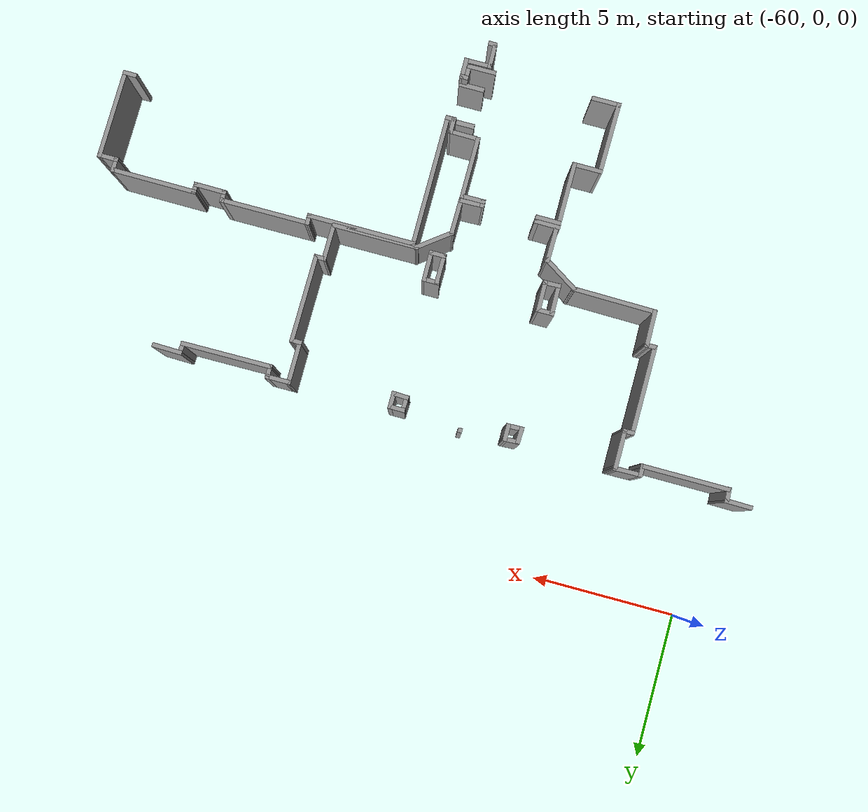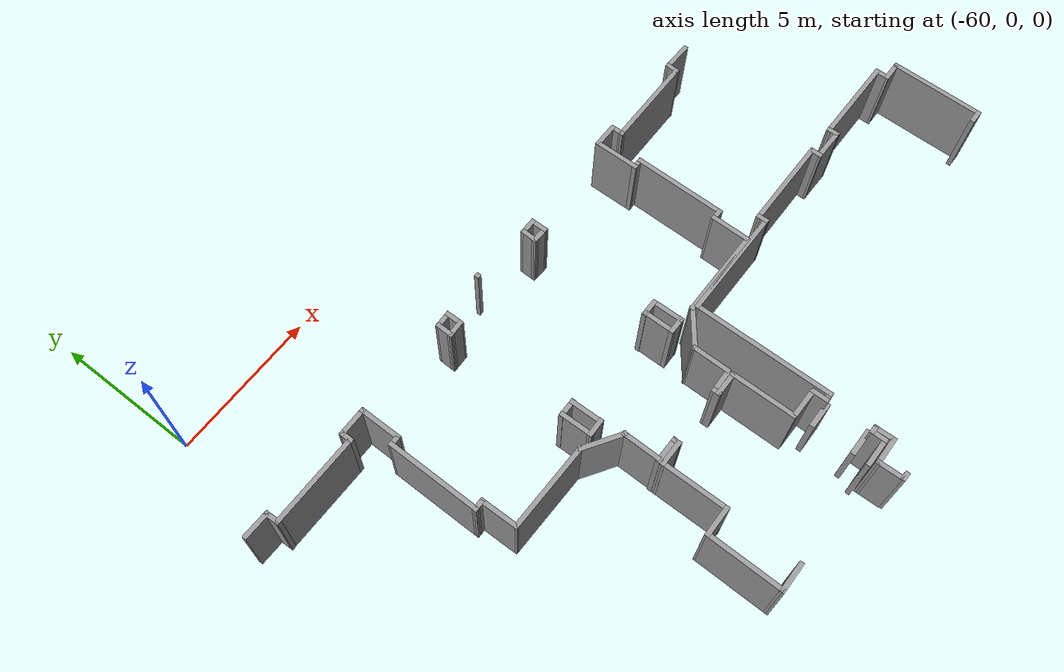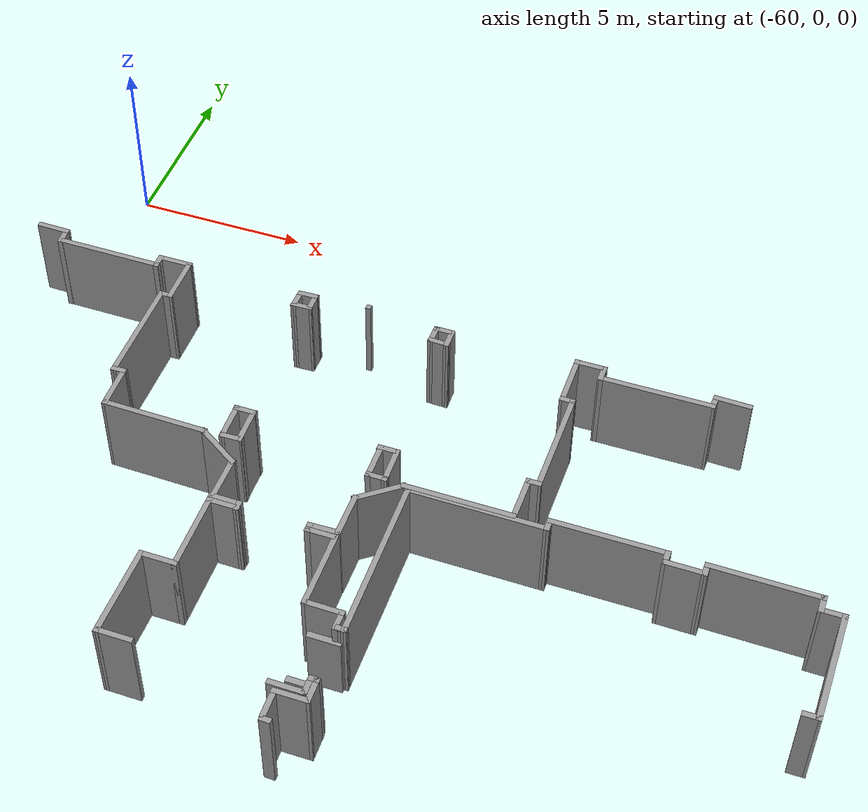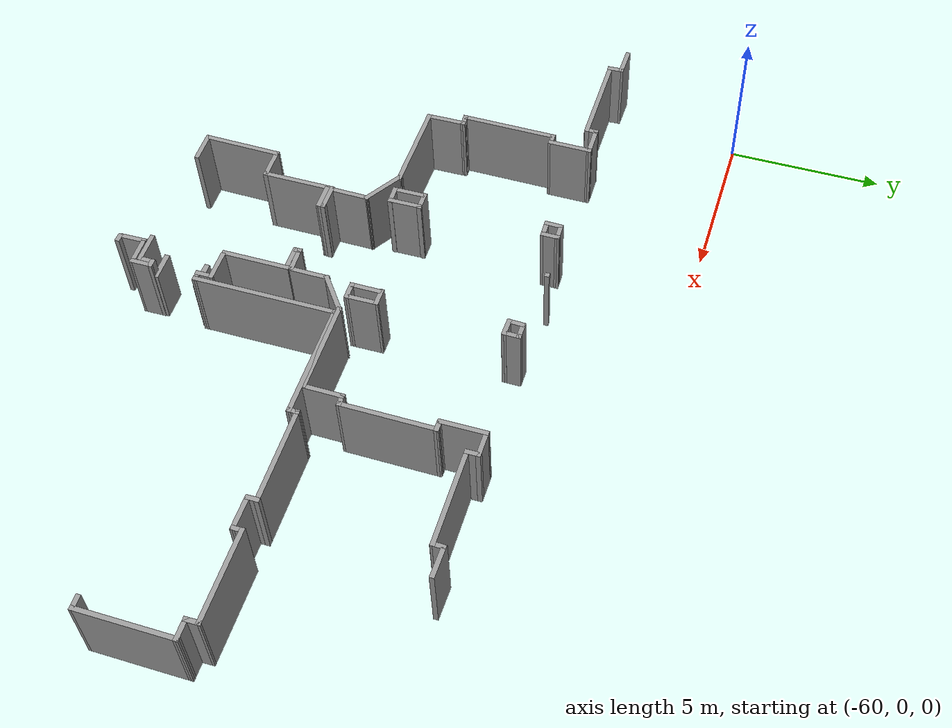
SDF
<sdf version="1.7">
 <model name="TD_n1_largo">
  <pose>-6.3187 -9.13173 0 0 -0 0</pose>
  <link name="Door_0">
   <collision name="Door_0_Collision">
    <geometry><box><size>0.9 0.17 2</size></box></geometry>
    <pose>0 0 1 0 -0 0</pose>
   </collision>
   <visual name="Door_0_Visual">
    <pose>0 0 1 0 -0 0</pose>
    <geometry><box><size>0.9 0.17 2</size></box></geometry>
    <material>
     <script><uri>file://media/materials/scripts/gazebo.material</uri><name>Gazebo/Grey</name></script>
    </material>
   </visual>
   <pose>-42.1501 -5.33292 0 0 -0 0</pose>
  </link>
  <link name="Door_1">
   <collision name="Door_1_Collision">
    <geometry><box><size>0.9 0.17 2</size></box></geometry>
    <pose>0 0 1 0 -0 0</pose>
   </collision>
   <visual name="Door_1_Visual">
    <pose>0 0 1 0 -0 0</pose>
    <geometry><box><size>0.9 0.17 2</size></box></geometry>
    <material>
     <script><uri>file://media/materials/scripts/gazebo.material</uri><name>Gazebo/Grey</name></script>
    </material>
   </visual>
   <pose>-42.1501 -6.68053 0 0 -0 0</pose>
  </link>
  <link name="Wall_100">
   <collision name="Wall_100_Collision">
    <geometry><box><size>1.28047 0.15 2.5</size></box></geometry>
    <pose>0 0 1.25 0 -0 0</pose>
   </collision>
   <visual name="Wall_100_Visual">
    <pose>0 0 1.25 0 -0 0</pose>
    <geometry><box><size>1.28047 0.15 2.5</size></box></geometry>
    <material>
     <script><uri>file://media/materials/scripts/gazebo.material</uri><name>Gazebo/Grey</name></script>
     <ambient>1 1 1 1</ambient>
    </material>
    <meta><layer>0</layer></meta>
   </visual>
   <pose>-42.8367 -1.97799 0 0 -0 1.5631</pose>
  </link>
  <link name="Wall_101">
   <collision name="Wall_101_Collision">
    <geometry><box><size>1.44048 0.15 2.5</size></box></geometry>
    <pose>0 0 1.25 0 -0 0</pose>
   </collision>
   <visual name="Wall_101_Visual">
    <pose>0 0 1.25 0 -0 0</pose>
    <geometry><box><size>1.44048 0.15 2.5</size></box></geometry>
    <material>
     <script><uri>file://media/materials/scripts/gazebo.material</uri><name>Gazebo/Grey</name></script>
     <ambient>1 1 1 1</ambient>
    </material>
    <meta><layer>0</layer></meta>
   </visual>
   <pose>-42.3193 -1.02147 0 0 -0 0.651587</pose>
  </link>
  <link name="Wall_102">
   <collision name="Wall_102_Collision">
    <geometry><box><size>3.03696 0.15 2.5</size></box></geometry>
    <pose>0 0 1.25 0 -0 0</pose>
   </collision>
   <visual name="Wall_102_Visual">
    <pose>0 0 1.25 0 -0 0</pose>
    <geometry><box><size>3.03696 0.15 2.5</size></box></geometry>
    <material>
     <script><uri>file://media/materials/scripts/gazebo.material</uri><name>Gazebo/Grey</name></script>
     <ambient>1 1 1 1</ambient>
    </material>
    <meta><layer>0</layer></meta>
   </visual>
   <pose>-40.3628 -0.630163 0 0 -0 0</pose>
  </link>
  <link name="Wall_12">
   <collision name="Wall_12_Collision">
    <geometry><box><size>0.486493 0.15 2.5</size></box></geometry>
    <pose>0 0 1.25 0 -0 0</pose>
   </collision>
   <visual name="Wall_12_Visual">
    <pose>0 0 1.25 0 -0 0</pose>
    <geometry><box><size>0.486493 0.15 2.5</size></box></geometry>
    <material>
     <script><uri>file://media/materials/scripts/gazebo.material</uri><name>Gazebo/Grey</name></script>
     <ambient>1 1 1 1</ambient>
    </material>
    <meta><layer>0</layer></meta>
   </visual>
   <pose>-30.735 -3.8925 0 0 -0 0</pose>
  </link>
  <link name="Wall_13">
   <collision name="Wall_13_Collision">
    <geometry><box><size>3.148 0.15 2.5</size></box></geometry>
    <pose>0 0 1.25 0 -0 0</pose>
   </collision>
   <visual name="Wall_13_Visual">
    <pose>0 0 1.25 0 -0 0</pose>
    <geometry><box><size>3.148 0.15 2.5</size></box></geometry>
    <material>
     <script><uri>file://media/materials/scripts/gazebo.material</uri><name>Gazebo/Grey</name></script>
     <ambient>1 1 1 1</ambient>
    </material>
    <meta><layer>0</layer></meta>
   </visual>
   <pose>-30.5515 -2.39358 0 0 -0 1.56059</pose>
  </link>
  <link name="Wall_132">
   <collision name="Wall_132_Collision">
    <geometry><box><size>0.299942 0.15 2.5</size></box></geometry>
    <pose>0 0 1.25 0 -0 0</pose>
   </collision>
   <visual name="Wall_132_Visual">
    <pose>0 0 1.25 0 -0 0</pose>
    <geometry><box><size>0.299942 0.15 2.5</size></box></geometry>
    <material>
     <script><uri>file://media/materials/scripts/gazebo.material</uri><name>Gazebo/Grey</name></script>
     <ambient>1 1 1 1</ambient>
    </material>
    <meta><layer>0</layer></meta>
   </visual>
   <pose>-41.832 -6.77616 0 0 -0 0</pose>
  </link>
  <link name="Wall_133">
   <collision name="Wall_133_Collision">
    <geometry><box><size>0.742112 0.15 2.5</size></box></geometry>
    <pose>0 0 1.25 0 -0 0</pose>
   </collision>
   <visual name="Wall_133_Visual">
    <pose>0 0 1.25 0 -0 0</pose>
    <geometry><box><size>0.742112 0.15 2.5</size></box></geometry>
    <material>
     <script><uri>file://media/materials/scripts/gazebo.material</uri><name>Gazebo/Grey</name></script>
     <ambient>1 1 1 1</ambient>
    </material>
    <meta><layer>0</layer></meta>
   </visual>
   <pose>-41.7558 -7.07218 0 0 -0 -1.56584</pose>
  </link>
  <link name="Wall_134">
   <collision name="Wall_134_Collision">
    <geometry><box><size>0.980954 0.15 2.5</size></box></geometry>
    <pose>0 0 1.25 0 -0 0</pose>
   </collision>
   <visual name="Wall_134_Visual">
    <pose>0 0 1.25 0 -0 0</pose>
    <geometry><box><size>0.980954 0.15 2.5</size></box></geometry>
    <material>
     <script><uri>file://media/materials/scripts/gazebo.material</uri><name>Gazebo/Grey</name></script>
     <ambient>1 1 1 1</ambient>
    </material>
    <meta><layer>0</layer></meta>
   </visual>
   <pose>-42.1698 -7.37118 0 0 -0 -3.13442</pose>
  </link>
  <link name="Wall_135">
   <collision name="Wall_135_Collision">
    <geometry><box><size>0.840096 0.15 2.5</size></box></geometry>
    <pose>0 0 1.25 0 -0 0</pose>
   </collision>
   <visual name="Wall_135_Visual">
    <pose>0 0 1.25 0 -0 0</pose>
    <geometry><box><size>0.840096 0.15 2.5</size></box></geometry>
    <material>
     <script><uri>file://media/materials/scripts/gazebo.material</uri><name>Gazebo/Grey</name></script>
     <ambient>1 1 1 1</ambient>
    </material>
    <meta><layer>0</layer></meta>
   </visual>
   <pose>-42.5795 -7.71917 0 0 -0 -1.55413</pose>
  </link>
  <link name="Wall_137">
   <collision name="Wall_137_Collision">
    <geometry><box><size>0.293985 0.15 2.5</size></box></geometry>
    <pose>0 0 1.25 0 -0 0</pose>
   </collision>
   <visual name="Wall_137_Visual">
    <pose>0 0 1.25 0 -0 0</pose>
    <geometry><box><size>0.293985 0.15 2.5</size></box></geometry>
    <material>
     <script><uri>file://media/materials/scripts/gazebo.material</uri><name>Gazebo/Grey</name></script>
     <ambient>1 1 1 1</ambient>
    </material>
    <meta><layer>0</layer></meta>
   </visual>
   <pose>-42.4823 -8.16209 0 0 -0 -0.045423</pose>
  </link>
  <link name="Wall_14">
   <collision name="Wall_14_Collision">
    <geometry><box><size>0.731214 0.15 2.5</size></box></geometry>
    <pose>0 0 1.25 0 -0 0</pose>
   </collision>
   <visual name="Wall_14_Visual">
    <pose>0 0 1.25 0 -0 0</pose>
    <geometry><box><size>0.731214 0.15 2.5</size></box></geometry>
    <material>
     <script><uri>file://media/materials/scripts/gazebo.material</uri><name>Gazebo/Grey</name></script>
     <ambient>1 1 1 1</ambient>
    </material>
    <meta><layer>0</layer></meta>
   </visual>
   <pose>-30.8268 -0.89466 0 0 -0 3.14159</pose>
  </link>
  <link name="Wall_150">
   <collision name="Wall_150_Collision">
    <geometry><box><size>3.15152 0.15 2.5</size></box></geometry>
    <pose>0 0 1.25 0 -0 0</pose>
   </collision>
   <visual name="Wall_150_Visual">
    <pose>0 0 1.25 0 -0 0</pose>
    <geometry><box><size>3.15152 0.15 2.5</size></box></geometry>
    <material>
     <script><uri>file://media/materials/scripts/gazebo.material</uri><name>Gazebo/Grey</name></script>
     <ambient>1 1 1 1</ambient>
    </material>
    <meta><layer>0</layer></meta>
   </visual>
   <pose>-50.4354 2.08143 0 0 -0 1.56696</pose>
  </link>
  <link name="Wall_151">
   <collision name="Wall_151_Collision">
    <geometry><box><size>0.415151 0.15 2.5</size></box></geometry>
    <pose>0 0 1.25 0 -0 0</pose>
   </collision>
   <visual name="Wall_151_Visual">
    <pose>0 0 1.25 0 -0 0</pose>
    <geometry><box><size>0.415151 0.15 2.5</size></box></geometry>
    <material>
     <script><uri>file://media/materials/scripts/gazebo.material</uri><name>Gazebo/Grey</name></script>
     <ambient>1 1 1 1</ambient>
    </material>
    <meta><layer>0</layer></meta>
   </visual>
   <pose>-50.2971 3.58444 0 0 -0 0.017007</pose>
  </link>
  <link name="Wall_152">
   <collision name="Wall_152_Collision">
    <geometry><box><size>1.44438 0.15 2.5</size></box></geometry>
    <pose>0 0 1.25 0 -0 0</pose>
   </collision>
   <visual name="Wall_152_Visual">
    <pose>0 0 1.25 0 -0 0</pose>
    <geometry><box><size>1.44438 0.15 2.5</size></box></geometry>
    <material>
     <script><uri>file://media/materials/scripts/gazebo.material</uri><name>Gazebo/Grey</name></script>
     <ambient>1 1 1 1</ambient>
    </material>
    <meta><layer>0</layer></meta>
   </visual>
   <pose>-50.1645 4.23383 0 0 -0 1.5708</pose>
  </link>
  <link name="Wall_154">
   <collision name="Wall_154_Collision">
    <geometry><box><size>1.31156 0.15 2.5</size></box></geometry>
    <pose>0 0 1.25 0 -0 0</pose>
   </collision>
   <visual name="Wall_154_Visual">
    <pose>0 0 1.25 0 -0 0</pose>
    <geometry><box><size>1.31156 0.15 2.5</size></box></geometry>
    <material>
     <script><uri>file://media/materials/scripts/gazebo.material</uri><name>Gazebo/Grey</name></script>
     <ambient>1 1 1 1</ambient>
    </material>
    <meta><layer>0</layer></meta>
   </visual>
   <pose>-38.8896 -0.01052 0 0 -0 1.5609</pose>
  </link>
  <link name="Wall_155">
   <collision name="Wall_155_Collision">
    <geometry><box><size>0.426 0.15 2.5</size></box></geometry>
    <pose>0 0 1.25 0 -0 0</pose>
   </collision>
   <visual name="Wall_155_Visual">
    <pose>0 0 1.25 0 -0 0</pose>
    <geometry><box><size>0.426 0.15 2.5</size></box></geometry>
    <material>
     <script><uri>file://media/materials/scripts/gazebo.material</uri><name>Gazebo/Grey</name></script>
     <ambient>1 1 1 1</ambient>
    </material>
    <meta><layer>0</layer></meta>
   </visual>
   <pose>-38.7458 0.57023 0 0 -0 0</pose>
  </link>
  <link name="Wall_156">
   <collision name="Wall_156_Collision">
    <geometry><box><size>3.11709 0.15 2.5</size></box></geometry>
    <pose>0 0 1.25 0 -0 0</pose>
   </collision>
   <visual name="Wall_156_Visual">
    <pose>0 0 1.25 0 -0 0</pose>
    <geometry><box><size>3.11709 0.15 2.5</size></box></geometry>
    <material>
     <script><uri>file://media/materials/scripts/gazebo.material</uri><name>Gazebo/Grey</name></script>
     <ambient>1 1 1 1</ambient>
    </material>
    <meta><layer>0</layer></meta>
   </visual>
   <pose>-38.5963 2.05373 0 0 -0 1.56304</pose>
  </link>
  <link name="Wall_157">
   <collision name="Wall_157_Collision">
    <geometry><box><size>0.426239 0.15 2.5</size></box></geometry>
    <pose>0 0 1.25 0 -0 0</pose>
   </collision>
   <visual name="Wall_157_Visual">
    <pose>0 0 1.25 0 -0 0</pose>
    <geometry><box><size>0.426239 0.15 2.5</size></box></geometry>
    <material>
     <script><uri>file://media/materials/scripts/gazebo.material</uri><name>Gazebo/Grey</name></script>
     <ambient>1 1 1 1</ambient>
    </material>
    <meta><layer>0</layer></meta>
   </visual>
   <pose>-38.7228 3.53723 0 0 -0 3.14159</pose>
  </link>
  <link name="Wall_159">
   <collision name="Wall_159_Collision">
    <geometry><box><size>0.6445 0.15 2.5</size></box></geometry>
    <pose>0 0 1.25 0 -0 0</pose>
   </collision>
   <visual name="Wall_159_Visual">
    <pose>0 0 1.25 0 -0 0</pose>
    <geometry><box><size>0.6445 0.15 2.5</size></box></geometry>
    <material>
     <script><uri>file://media/materials/scripts/gazebo.material</uri><name>Gazebo/Grey</name></script>
     <ambient>1 1 1 1</ambient>
    </material>
    <meta><layer>0</layer></meta>
   </visual>
   <pose>-46.5716 0.37473 0 0 -0 0</pose>
  </link>
  <link name="Wall_16">
   <collision name="Wall_16_Collision">
    <geometry><box><size>0.524558 0.15 2.5</size></box></geometry>
    <pose>0 0 1.25 0 -0 0</pose>
   </collision>
   <visual name="Wall_16_Visual">
    <pose>0 0 1.25 0 -0 0</pose>
    <geometry><box><size>0.524558 0.15 2.5</size></box></geometry>
    <material>
     <script><uri>file://media/materials/scripts/gazebo.material</uri><name>Gazebo/Grey</name></script>
     <ambient>1 1 1 1</ambient>
    </material>
    <meta><layer>0</layer></meta>
   </visual>
   <pose>-31.118 -0.707382 0 0 -0 1.57401</pose>
  </link>
  <link name="Wall_160">
   <collision name="Wall_160_Collision">
    <geometry><box><size>1.11607 0.15 2.5</size></box></geometry>
    <pose>0 0 1.25 0 -0 0</pose>
   </collision>
   <visual name="Wall_160_Visual">
    <pose>0 0 1.25 0 -0 0</pose>
    <geometry><box><size>1.11607 0.15 2.5</size></box></geometry>
    <material>
     <script><uri>file://media/materials/scripts/gazebo.material</uri><name>Gazebo/Grey</name></script>
     <ambient>1 1 1 1</ambient>
    </material>
    <meta><layer>0</layer></meta>
   </visual>
   <pose>-46.3301 -0.10827 0 0 -0 -1.55889</pose>
  </link>
  <link name="Wall_161">
   <collision name="Wall_161_Collision">
    <geometry><box><size>0.633137 0.15 2.5</size></box></geometry>
    <pose>0 0 1.25 0 -0 0</pose>
   </collision>
   <visual name="Wall_161_Visual">
    <pose>0 0 1.25 0 -0 0</pose>
    <geometry><box><size>0.633137 0.15 2.5</size></box></geometry>
    <material>
     <script><uri>file://media/materials/scripts/gazebo.material</uri><name>Gazebo/Grey</name></script>
     <ambient>1 1 1 1</ambient>
    </material>
    <meta><layer>0</layer></meta>
   </visual>
   <pose>-46.5543 -0.59702 0 0 -0 -3.11779</pose>
  </link>
  <link name="Wall_162">
   <collision name="Wall_162_Collision">
    <geometry><box><size>1.11607 0.15 2.5</size></box></geometry>
    <pose>0 0 1.25 0 -0 0</pose>
   </collision>
   <visual name="Wall_162_Visual">
    <pose>0 0 1.25 0 -0 0</pose>
    <geometry><box><size>1.11607 0.15 2.5</size></box></geometry>
    <material>
     <script><uri>file://media/materials/scripts/gazebo.material</uri><name>Gazebo/Grey</name></script>
     <ambient>1 1 1 1</ambient>
    </material>
    <meta><layer>0</layer></meta>
   </visual>
   <pose>-46.8016 -0.11977 0 0 -0 1.5827</pose>
  </link>
  <link name="Wall_164">
   <collision name="Wall_164_Collision">
    <geometry><box><size>0.61 0.15 2.5</size></box></geometry>
    <pose>0 0 1.25 0 -0 0</pose>
   </collision>
   <visual name="Wall_164_Visual">
    <pose>0 0 1.25 0 -0 0</pose>
    <geometry><box><size>0.61 0.15 2.5</size></box></geometry>
    <material>
     <script><uri>file://media/materials/scripts/gazebo.material</uri><name>Gazebo/Grey</name></script>
     <ambient>1 1 1 1</ambient>
    </material>
    <meta><layer>0</layer></meta>
   </visual>
   <pose>-42.5753 0.36323 0 0 -0 0</pose>
  </link>
  <link name="Wall_165">
   <collision name="Wall_165_Collision">
    <geometry><box><size>1.09307 0.15 2.5</size></box></geometry>
    <pose>0 0 1.25 0 -0 0</pose>
   </collision>
   <visual name="Wall_165_Visual">
    <pose>0 0 1.25 0 -0 0</pose>
    <geometry><box><size>1.09307 0.15 2.5</size></box></geometry>
    <material>
     <script><uri>file://media/materials/scripts/gazebo.material</uri><name>Gazebo/Grey</name></script>
     <ambient>1 1 1 1</ambient>
    </material>
    <meta><layer>0</layer></meta>
   </visual>
   <pose>-42.3396 -0.10827 0 0 -0 -1.5586</pose>
  </link>
  <link name="Wall_166">
   <collision name="Wall_166_Collision">
    <geometry><box><size>0.5985 0.15 2.5</size></box></geometry>
    <pose>0 0 1.25 0 -0 0</pose>
   </collision>
   <visual name="Wall_166_Visual">
    <pose>0 0 1.25 0 -0 0</pose>
    <geometry><box><size>0.5985 0.15 2.5</size></box></geometry>
    <material>
     <script><uri>file://media/materials/scripts/gazebo.material</uri><name>Gazebo/Grey</name></script>
     <ambient>1 1 1 1</ambient>
    </material>
    <meta><layer>0</layer></meta>
   </visual>
   <pose>-42.5581 -0.57977 0 0 -0 3.14159</pose>
  </link>
  <link name="Wall_167">
   <collision name="Wall_167_Collision">
    <geometry><box><size>1.0585 0.15 2.5</size></box></geometry>
    <pose>0 0 1.25 0 -0 0</pose>
   </collision>
   <visual name="Wall_167_Visual">
    <pose>0 0 1.25 0 -0 0</pose>
    <geometry><box><size>1.0585 0.15 2.5</size></box></geometry>
    <material>
     <script><uri>file://media/materials/scripts/gazebo.material</uri><name>Gazebo/Grey</name></script>
     <ambient>1 1 1 1</ambient>
    </material>
    <meta><layer>0</layer></meta>
   </visual>
   <pose>-42.7823 -0.12552 0 0 -0 1.5708</pose>
  </link>
  <link name="Wall_169">
   <collision name="Wall_169_Collision">
    <geometry><box><size>0.591316 0.15 2.5</size></box></geometry>
    <pose>0 0 1.25 0 -0 0</pose>
   </collision>
   <visual name="Wall_169_Visual">
    <pose>0 0 1.25 0 -0 0</pose>
    <geometry><box><size>0.591316 0.15 2.5</size></box></geometry>
    <material>
     <script><uri>file://media/materials/scripts/gazebo.material</uri><name>Gazebo/Grey</name></script>
     <ambient>1 1 1 1</ambient>
    </material>
    <meta><layer>0</layer></meta>
   </visual>
   <pose>-46.5798 4.88282 0 0 -0 0.034469</pose>
  </link>
  <link name="Wall_17">
   <collision name="Wall_17_Collision">
    <geometry><box><size>3.02336 0.15 2.5</size></box></geometry>
    <pose>0 0 1.25 0 -0 0</pose>
   </collision>
   <visual name="Wall_17_Visual">
    <pose>0 0 1.25 0 -0 0</pose>
    <geometry><box><size>3.02336 0.15 2.5</size></box></geometry>
    <material>
     <script><uri>file://media/materials/scripts/gazebo.material</uri><name>Gazebo/Grey</name></script>
     <ambient>1 1 1 1</ambient>
    </material>
    <meta><layer>0</layer></meta>
   </visual>
   <pose>-32.5552 -0.511575 0 0 -0 3.13566</pose>
  </link>
  <link name="Wall_170">
   <collision name="Wall_170_Collision">
    <geometry><box><size>0.606263 0.15 2.5</size></box></geometry>
    <pose>0 0 1.25 0 -0 0</pose>
   </collision>
   <visual name="Wall_170_Visual">
    <pose>0 0 1.25 0 -0 0</pose>
    <geometry><box><size>0.606263 0.15 2.5</size></box></geometry>
    <material>
     <script><uri>file://media/materials/scripts/gazebo.material</uri><name>Gazebo/Grey</name></script>
     <ambient>1 1 1 1</ambient>
    </material>
    <meta><layer>0</layer></meta>
   </visual>
   <pose>-46.3592 4.6623 0 0 -0 -1.5708</pose>
  </link>
  <link name="Wall_171">
   <collision name="Wall_171_Collision">
    <geometry><box><size>0.607275 0.15 2.5</size></box></geometry>
    <pose>0 0 1.25 0 -0 0</pose>
   </collision>
   <visual name="Wall_171_Visual">
    <pose>0 0 1.25 0 -0 0</pose>
    <geometry><box><size>0.607275 0.15 2.5</size></box></geometry>
    <material>
     <script><uri>file://media/materials/scripts/gazebo.material</uri><name>Gazebo/Grey</name></script>
     <ambient>1 1 1 1</ambient>
    </material>
    <meta><layer>0</layer></meta>
   </visual>
   <pose>-46.5874 4.42656 0 0 -0 -3.10827</pose>
  </link>
  <link name="Wall_172">
   <collision name="Wall_172_Collision">
    <geometry><box><size>0.591316 0.15 2.5</size></box></geometry>
    <pose>0 0 1.25 0 -0 0</pose>
   </collision>
   <visual name="Wall_172_Visual">
    <pose>0 0 1.25 0 -0 0</pose>
    <geometry><box><size>0.591316 0.15 2.5</size></box></geometry>
    <material>
     <script><uri>file://media/materials/scripts/gazebo.material</uri><name>Gazebo/Grey</name></script>
     <ambient>1 1 1 1</ambient>
    </material>
    <meta><layer>0</layer></meta>
   </visual>
   <pose>-46.8079 4.63948 0 0 -0 1.53633</pose>
  </link>
  <link name="Wall_174">
   <collision name="Wall_174_Collision">
    <geometry><box><size>1.54882 0.15 2.5</size></box></geometry>
    <pose>0 0 1.25 0 -0 0</pose>
   </collision>
   <visual name="Wall_174_Visual">
    <pose>0 0 1.25 0 -0 0</pose>
    <geometry><box><size>1.54882 0.15 2.5</size></box></geometry>
    <material>
     <script><uri>file://media/materials/scripts/gazebo.material</uri><name>Gazebo/Grey</name></script>
     <ambient>1 1 1 1</ambient>
    </material>
    <meta><layer>0</layer></meta>
   </visual>
   <pose>-38.8611 4.23664 0 0 -0 1.57116</pose>
  </link>
  <link name="Wall_175">
   <collision name="Wall_175_Collision">
    <geometry><box><size>0.895229 0.15 2.5</size></box></geometry>
    <pose>0 0 1.25 0 -0 0</pose>
   </collision>
   <visual name="Wall_175_Visual">
    <pose>0 0 1.25 0 -0 0</pose>
    <geometry><box><size>0.895229 0.15 2.5</size></box></geometry>
    <material>
     <script><uri>file://media/materials/scripts/gazebo.material</uri><name>Gazebo/Grey</name></script>
     <ambient>1 1 1 1</ambient>
    </material>
    <meta><layer>0</layer></meta>
   </visual>
   <pose>-38.4887 4.93605 0 0 -0 0</pose>
  </link>
  <link name="Wall_176">
   <collision name="Wall_176_Collision">
    <geometry><box><size>0.500132 0.15 2.5</size></box></geometry>
    <pose>0 0 1.25 0 -0 0</pose>
   </collision>
   <visual name="Wall_176_Visual">
    <pose>0 0 1.25 0 -0 0</pose>
    <geometry><box><size>0.500132 0.15 2.5</size></box></geometry>
    <material>
     <script><uri>file://media/materials/scripts/gazebo.material</uri><name>Gazebo/Grey</name></script>
     <ambient>1 1 1 1</ambient>
    </material>
    <meta><layer>0</layer></meta>
   </visual>
   <pose>-38.1161 4.76115 0 0 -0 -1.5708</pose>
  </link>
  <link name="Wall_177">
   <collision name="Wall_177_Collision">
    <geometry><box><size>3.19175 0.15 2.5</size></box></geometry>
    <pose>0 0 1.25 0 -0 0</pose>
   </collision>
   <visual name="Wall_177_Visual">
    <pose>0 0 1.25 0 -0 0</pose>
    <geometry><box><size>3.19175 0.15 2.5</size></box></geometry>
    <material>
     <script><uri>file://media/materials/scripts/gazebo.material</uri><name>Gazebo/Grey</name></script>
     <ambient>1 1 1 1</ambient>
    </material>
    <meta><layer>0</layer></meta>
   </visual>
   <pose>-36.5952 4.59386 0 0 -0 0.005</pose>
  </link>
  <link name="Wall_178">
   <collision name="Wall_178_Collision">
    <geometry><box><size>0.458278 0.15 2.5</size></box></geometry>
    <pose>0 0 1.25 0 -0 0</pose>
   </collision>
   <visual name="Wall_178_Visual">
    <pose>0 0 1.25 0 -0 0</pose>
    <geometry><box><size>0.458278 0.15 2.5</size></box></geometry>
    <material>
     <script><uri>file://media/materials/scripts/gazebo.material</uri><name>Gazebo/Grey</name></script>
     <ambient>1 1 1 1</ambient>
    </material>
    <meta><layer>0</layer></meta>
   </visual>
   <pose>-35.0665 4.7554 0 0 -0 1.52023</pose>
  </link>
  <link name="Wall_179">
   <collision name="Wall_179_Collision">
    <geometry><box><size>1.05149 0.15 2.5</size></box></geometry>
    <pose>0 0 1.25 0 -0 0</pose>
   </collision>
   <visual name="Wall_179_Visual">
    <pose>0 0 1.25 0 -0 0</pose>
    <geometry><box><size>1.05149 0.15 2.5</size></box></geometry>
    <material>
     <script><uri>file://media/materials/scripts/gazebo.material</uri><name>Gazebo/Grey</name></script>
     <ambient>1 1 1 1</ambient>
    </material>
    <meta><layer>0</layer></meta>
   </visual>
   <pose>-34.6081 4.91052 0 0 -0 -0.0229</pose>
  </link>
  <link name="Wall_18">
   <collision name="Wall_18_Collision">
    <geometry><box><size>0.40685 0.15 2.5</size></box></geometry>
    <pose>0 0 1.25 0 -0 0</pose>
   </collision>
   <visual name="Wall_18_Visual">
    <pose>0 0 1.25 0 -0 0</pose>
    <geometry><box><size>0.40685 0.15 2.5</size></box></geometry>
    <material>
     <script><uri>file://media/materials/scripts/gazebo.material</uri><name>Gazebo/Grey</name></script>
     <ambient>1 1 1 1</ambient>
    </material>
    <meta><layer>0</layer></meta>
   </visual>
   <pose>-33.9918 -0.638046 0 0 -0 -1.5708</pose>
  </link>
  <link name="Wall_182">
   <collision name="Wall_182_Collision">
    <geometry><box><size>0.591054 0.15 2.5</size></box></geometry>
    <pose>0 0 1.25 0 -0 0</pose>
   </collision>
   <visual name="Wall_182_Visual">
    <pose>0 0 1.25 0 -0 0</pose>
    <geometry><box><size>0.591054 0.15 2.5</size></box></geometry>
    <material>
     <script><uri>file://media/materials/scripts/gazebo.material</uri><name>Gazebo/Grey</name></script>
     <ambient>1 1 1 1</ambient>
    </material>
    <meta><layer>0</layer></meta>
   </visual>
   <pose>-42.588 4.84161 0 0 -0 0</pose>
  </link>
  <link name="Wall_183">
   <collision name="Wall_183_Collision">
    <geometry><box><size>0.606263 0.15 2.5</size></box></geometry>
    <pose>0 0 1.25 0 -0 0</pose>
   </collision>
   <visual name="Wall_183_Visual">
    <pose>0 0 1.25 0 -0 0</pose>
    <geometry><box><size>0.606263 0.15 2.5</size></box></geometry>
    <material>
     <script><uri>file://media/materials/scripts/gazebo.material</uri><name>Gazebo/Grey</name></script>
     <ambient>1 1 1 1</ambient>
    </material>
    <meta><layer>0</layer></meta>
   </visual>
   <pose>-42.3674 4.61348 0 0 -0 -1.5708</pose>
  </link>
  <link name="Wall_184">
   <collision name="Wall_184_Collision">
    <geometry><box><size>0.606516 0.15 2.5</size></box></geometry>
    <pose>0 0 1.25 0 -0 0</pose>
   </collision>
   <visual name="Wall_184_Visual">
    <pose>0 0 1.25 0 -0 0</pose>
    <geometry><box><size>0.606516 0.15 2.5</size></box></geometry>
    <material>
     <script><uri>file://media/materials/scripts/gazebo.material</uri><name>Gazebo/Grey</name></script>
     <ambient>1 1 1 1</ambient>
    </material>
    <meta><layer>0</layer></meta>
   </visual>
   <pose>-42.5956 4.39295 0 0 -0 3.10827</pose>
  </link>
  <link name="Wall_185">
   <collision name="Wall_185_Collision">
    <geometry><box><size>0.560918 0.15 2.5</size></box></geometry>
    <pose>0 0 1.25 0 -0 0</pose>
   </collision>
   <visual name="Wall_185_Visual">
    <pose>0 0 1.25 0 -0 0</pose>
    <geometry><box><size>0.560918 0.15 2.5</size></box></geometry>
    <material>
     <script><uri>file://media/materials/scripts/gazebo.material</uri><name>Gazebo/Grey</name></script>
     <ambient>1 1 1 1</ambient>
    </material>
    <meta><layer>0</layer></meta>
   </visual>
   <pose>-42.8161 4.60588 0 0 -0 1.53378</pose>
  </link>
  <link name="Wall_19">
   <collision name="Wall_19_Collision">
    <geometry><box><size>1.14962 0.15 2.5</size></box></geometry>
    <pose>0 0 1.25 0 -0 0</pose>
   </collision>
   <visual name="Wall_19_Visual">
    <pose>0 0 1.25 0 -0 0</pose>
    <geometry><box><size>1.14962 0.15 2.5</size></box></geometry>
    <material>
     <script><uri>file://media/materials/scripts/gazebo.material</uri><name>Gazebo/Grey</name></script>
     <ambient>1 1 1 1</ambient>
    </material>
    <meta><layer>0</layer></meta>
   </visual>
   <pose>-34.4916 -0.76164 0 0 -0 3.13193</pose>
  </link>
  <link name="Wall_20">
   <collision name="Wall_20_Collision">
    <geometry><box><size>0.433038 0.15 2.5</size></box></geometry>
    <pose>0 0 1.25 0 -0 0</pose>
   </collision>
   <visual name="Wall_20_Visual">
    <pose>0 0 1.25 0 -0 0</pose>
    <geometry><box><size>0.433038 0.15 2.5</size></box></geometry>
    <material>
     <script><uri>file://media/materials/scripts/gazebo.material</uri><name>Gazebo/Grey</name></script>
     <ambient>1 1 1 1</ambient>
    </material>
    <meta><layer>0</layer></meta>
   </visual>
   <pose>-34.9914 -0.615444 0 0 -0 1.5708</pose>
  </link>
  <link name="Wall_202">
   <collision name="Wall_202_Collision">
    <geometry><box><size>1.02007 0.15 2.5</size></box></geometry>
    <pose>0 0 1.25 0 -0 0</pose>
   </collision>
   <visual name="Wall_202_Visual">
    <pose>0 0 1.25 0 -0 0</pose>
    <geometry><box><size>1.02007 0.15 2.5</size></box></geometry>
    <material>
     <script><uri>file://media/materials/scripts/gazebo.material</uri><name>Gazebo/Grey</name></script>
     <ambient>1 1 1 1</ambient>
    </material>
    <meta><layer>0</layer></meta>
   </visual>
   <pose>-50.5996 4.87651 0 0 -0 -3.13138</pose>
  </link>
  <link name="Wall_203">
   <collision name="Wall_203_Collision">
    <geometry><box><size>0.452373 0.15 2.5</size></box></geometry>
    <pose>0 0 1.25 0 -0 0</pose>
   </collision>
   <visual name="Wall_203_Visual">
    <pose>0 0 1.25 0 -0 0</pose>
    <geometry><box><size>0.452373 0.15 2.5</size></box></geometry>
    <material>
     <script><uri>file://media/materials/scripts/gazebo.material</uri><name>Gazebo/Grey</name></script>
     <ambient>1 1 1 1</ambient>
    </material>
    <meta><layer>0</layer></meta>
   </visual>
   <pose>-51.0346 4.72122 0 0 -0 -1.5708</pose>
  </link>
  <link name="Wall_204">
   <collision name="Wall_204_Collision">
    <geometry><box><size>3.11663 0.15 2.5</size></box></geometry>
    <pose>0 0 1.25 0 -0 0</pose>
   </collision>
   <visual name="Wall_204_Visual">
    <pose>0 0 1.25 0 -0 0</pose>
    <geometry><box><size>3.11663 0.15 2.5</size></box></geometry>
    <material>
     <script><uri>file://media/materials/scripts/gazebo.material</uri><name>Gazebo/Grey</name></script>
     <ambient>1 1 1 1</ambient>
    </material>
    <meta><layer>0</layer></meta>
   </visual>
   <pose>-52.5177 4.57525 0 0 -0 3.1383</pose>
  </link>
  <link name="Wall_205">
   <collision name="Wall_205_Collision">
    <geometry><box><size>0.532687 0.15 2.5</size></box></geometry>
    <pose>0 0 1.25 0 -0 0</pose>
   </collision>
   <visual name="Wall_205_Visual">
    <pose>0 0 1.25 0 -0 0</pose>
    <geometry><box><size>0.532687 0.15 2.5</size></box></geometry>
    <material>
     <script><uri>file://media/materials/scripts/gazebo.material</uri><name>Gazebo/Grey</name></script>
     <ambient>1 1 1 1</ambient>
    </material>
    <meta><layer>0</layer></meta>
   </visual>
   <pose>-54.011 4.76122 0 0 -0 1.62338</pose>
  </link>
  <link name="Wall_206">
   <collision name="Wall_206_Collision">
    <geometry><box><size>0.958556 0.15 2.5</size></box></geometry>
    <pose>0 0 1.25 0 -0 0</pose>
   </collision>
   <visual name="Wall_206_Visual">
    <pose>0 0 1.25 0 -0 0</pose>
    <geometry><box><size>0.958556 0.15 2.5</size></box></geometry>
    <material>
     <script><uri>file://media/materials/scripts/gazebo.material</uri><name>Gazebo/Grey</name></script>
     <ambient>1 1 1 1</ambient>
    </material>
    <meta><layer>0</layer></meta>
   </visual>
   <pose>-54.4253 4.96961 0 0 -0 3.12349</pose>
  </link>
  <link name="Wall_21">
   <collision name="Wall_21_Collision">
    <geometry><box><size>3.16552 0.15 2.5</size></box></geometry>
    <pose>0 0 1.25 0 -0 0</pose>
   </collision>
   <visual name="Wall_21_Visual">
    <pose>0 0 1.25 0 -0 0</pose>
    <geometry><box><size>3.16552 0.15 2.5</size></box></geometry>
    <material>
     <script><uri>file://media/materials/scripts/gazebo.material</uri><name>Gazebo/Grey</name></script>
     <ambient>1 1 1 1</ambient>
    </material>
    <meta><layer>0</layer></meta>
   </visual>
   <pose>-36.4991 -0.475275 0 0 -0 -3.1408</pose>
  </link>
  <link name="Wall_22">
   <collision name="Wall_22_Collision">
    <geometry><box><size>0.398231 0.15 2.5</size></box></geometry>
    <pose>0 0 1.25 0 -0 0</pose>
   </collision>
   <visual name="Wall_22_Visual">
    <pose>0 0 1.25 0 -0 0</pose>
    <geometry><box><size>0.398231 0.15 2.5</size></box></geometry>
    <material>
     <script><uri>file://media/materials/scripts/gazebo.material</uri><name>Gazebo/Grey</name></script>
     <ambient>1 1 1 1</ambient>
    </material>
    <meta><layer>0</layer></meta>
   </visual>
   <pose>-38.006 -0.600575 0 0 -0 -1.56374</pose>
  </link>
  <link name="Wall_25">
   <collision name="Wall_25_Collision">
    <geometry><box><size>3.81039 0.15 2.5</size></box></geometry>
    <pose>0 0 1.25 0 -0 0</pose>
   </collision>
   <visual name="Wall_25_Visual">
    <pose>0 0 1.25 0 -0 0</pose>
    <geometry><box><size>3.81039 0.15 2.5</size></box></geometry>
    <material>
     <script><uri>file://media/materials/scripts/gazebo.material</uri><name>Gazebo/Grey</name></script>
     <ambient>1 1 1 1</ambient>
    </material>
    <meta><layer>0</layer></meta>
   </visual>
   <pose>-39.8353 -0.720312 0 0 -0 3.13921</pose>
  </link>
  <link name="Wall_26">
   <collision name="Wall_26_Collision">
    <geometry><box><size>4.68131 0.15 2.5</size></box></geometry>
    <pose>0 0 1.25 0 -0 0</pose>
   </collision>
   <visual name="Wall_26_Visual">
    <pose>0 0 1.25 0 -0 0</pose>
    <geometry><box><size>4.68131 0.15 2.5</size></box></geometry>
    <material>
     <script><uri>file://media/materials/scripts/gazebo.material</uri><name>Gazebo/Grey</name></script>
     <ambient>1 1 1 1</ambient>
    </material>
    <meta><layer>0</layer></meta>
   </visual>
   <pose>-41.6637 -2.9816 0 0 -0 -1.56999</pose>
  </link>
  <link name="Wall_27">
   <collision name="Wall_27_Collision">
    <geometry><box><size>0.312594 0.15 2.5</size></box></geometry>
    <pose>0 0 1.25 0 -0 0</pose>
   </collision>
   <visual name="Wall_27_Visual">
    <pose>0 0 1.25 0 -0 0</pose>
    <geometry><box><size>0.312594 0.15 2.5</size></box></geometry>
    <material>
     <script><uri>file://media/materials/scripts/gazebo.material</uri><name>Gazebo/Grey</name></script>
     <ambient>1 1 1 1</ambient>
    </material>
    <meta><layer>0</layer></meta>
   </visual>
   <pose>-41.743 -5.24482 0 0 -0 3.11161</pose>
  </link>
  <link name="Wall_283">
   <collision name="Wall_283_Collision">
    <geometry><box><size>0.15 0.15 2.5</size></box></geometry>
    <pose>0 0 1.25 0 -0 0</pose>
   </collision>
   <visual name="Wall_283_Visual">
    <pose>0 0 1.25 0 -0 0</pose>
    <geometry><box><size>0.15 0.15 2.5</size></box></geometry>
    <material>
     <script><uri>file://media/materials/scripts/gazebo.material</uri><name>Gazebo/Grey</name></script>
     <ambient>0 0 0 1</ambient>
    </material>
    <meta><layer>0</layer></meta>
   </visual>
   <pose>-44.8343 4.99999 0 0 -0 0</pose>
  </link>
  <link name="Wall_74">
   <collision name="Wall_74_Collision">
    <geometry><box><size>1.02468 0.15 2.5</size></box></geometry>
    <pose>0 0 1.25 0 -0 0</pose>
   </collision>
   <visual name="Wall_74_Visual">
    <pose>0 0 1.25 0 -0 0</pose>
    <geometry><box><size>1.02468 0.15 2.5</size></box></geometry>
    <material>
     <script><uri>file://media/materials/scripts/gazebo.material</uri><name>Gazebo/Grey</name></script>
     <ambient>1 1 1 1</ambient>
    </material>
    <meta><layer>0</layer></meta>
   </visual>
   <pose>-46.7637 -7.20586 0 0 -0 3.14159</pose>
  </link>
  <link name="Wall_75">
   <collision name="Wall_75_Collision">
    <geometry><box><size>2.5642 0.15 2.5</size></box></geometry>
    <pose>0 0 1.25 0 -0 0</pose>
   </collision>
   <visual name="Wall_75_Visual">
    <pose>0 0 1.25 0 -0 0</pose>
    <geometry><box><size>2.5642 0.15 2.5</size></box></geometry>
    <material>
     <script><uri>file://media/materials/scripts/gazebo.material</uri><name>Gazebo/Grey</name></script>
     <ambient>1 1 1 1</ambient>
    </material>
    <meta><layer>0</layer></meta>
   </visual>
   <pose>-47.1835 -5.99904 0 0 -0 1.55631</pose>
  </link>
  <link name="Wall_76">
   <collision name="Wall_76_Collision">
    <geometry><box><size>1.05948 0.15 2.5</size></box></geometry>
    <pose>0 0 1.25 0 -0 0</pose>
   </collision>
   <visual name="Wall_76_Visual">
    <pose>0 0 1.25 0 -0 0</pose>
    <geometry><box><size>1.05948 0.15 2.5</size></box></geometry>
    <material>
     <script><uri>file://media/materials/scripts/gazebo.material</uri><name>Gazebo/Grey</name></script>
     <ambient>1 1 1 1</ambient>
    </material>
    <meta><layer>0</layer></meta>
   </visual>
   <pose>-46.7112 -4.79223 0 0 -0 0</pose>
  </link>
  <link name="Wall_77">
   <collision name="Wall_77_Collision">
    <geometry><box><size>2.25 0.15 2.5</size></box></geometry>
    <pose>0 0 1.25 0 -0 0</pose>
   </collision>
   <visual name="Wall_77_Visual">
    <pose>0 0 1.25 0 -0 0</pose>
    <geometry><box><size>2.25 0.15 2.5</size></box></geometry>
    <material>
     <script><uri>file://media/materials/scripts/gazebo.material</uri><name>Gazebo/Grey</name></script>
     <ambient>1 1 1 1</ambient>
    </material>
    <meta><layer>0</layer></meta>
   </visual>
   <pose>-46.2565 -3.74223 0 0 -0 1.5708</pose>
  </link>
  <link name="Wall_78">
   <collision name="Wall_78_Collision">
    <geometry><box><size>0.89708 0.15 2.5</size></box></geometry>
    <pose>0 0 1.25 0 -0 0</pose>
   </collision>
   <visual name="Wall_78_Visual">
    <pose>0 0 1.25 0 -0 0</pose>
    <geometry><box><size>0.89708 0.15 2.5</size></box></geometry>
    <material>
     <script><uri>file://media/materials/scripts/gazebo.material</uri><name>Gazebo/Grey</name></script>
     <ambient>1 1 1 1</ambient>
    </material>
    <meta><layer>0</layer></meta>
   </visual>
   <pose>-45.883 -2.69396 0 0 -0 -0.00464</pose>
  </link>
  <link name="Wall_79">
   <collision name="Wall_79_Collision">
    <geometry><box><size>0.298425 0.15 2.5</size></box></geometry>
    <pose>0 0 1.25 0 -0 0</pose>
   </collision>
   <visual name="Wall_79_Visual">
    <pose>0 0 1.25 0 -0 0</pose>
    <geometry><box><size>0.298425 0.15 2.5</size></box></geometry>
    <material>
     <script><uri>file://media/materials/scripts/gazebo.material</uri><name>Gazebo/Grey</name></script>
     <ambient>1 1 1 1</ambient>
    </material>
    <meta><layer>0</layer></meta>
   </visual>
   <pose>-45.5094 -2.62148 0 0 -0 1.5691</pose>
  </link>
  <link name="Wall_80">
   <collision name="Wall_80_Collision">
    <geometry><box><size>0.905945 0.15 2.5</size></box></geometry>
    <pose>0 0 1.25 0 -0 0</pose>
   </collision>
   <visual name="Wall_80_Visual">
    <pose>0 0 1.25 0 -0 0</pose>
    <geometry><box><size>0.905945 0.15 2.5</size></box></geometry>
    <material>
     <script><uri>file://media/materials/scripts/gazebo.material</uri><name>Gazebo/Grey</name></script>
     <ambient>1 1 1 1</ambient>
    </material>
    <meta><layer>0</layer></meta>
   </visual>
   <pose>-45.8834 -2.5463 0 0 -0 3.12907</pose>
  </link>
  <link name="Wall_82">
   <collision name="Wall_82_Collision">
    <geometry><box><size>1.29076 0.15 2.5</size></box></geometry>
    <pose>0 0 1.25 0 -0 0</pose>
   </collision>
   <visual name="Wall_82_Visual">
    <pose>0 0 1.25 0 -0 0</pose>
    <geometry><box><size>1.29076 0.15 2.5</size></box></geometry>
    <material>
     <script><uri>file://media/materials/scripts/gazebo.material</uri><name>Gazebo/Grey</name></script>
     <ambient>1 1 1 1</ambient>
    </material>
    <meta><layer>0</layer></meta>
   </visual>
   <pose>-46.2155 -1.9176 0 0 -0 1.55746</pose>
  </link>
  <link name="Wall_83">
   <collision name="Wall_83_Collision">
    <geometry><box><size>1.47045 0.15 2.5</size></box></geometry>
    <pose>0 0 1.25 0 -0 0</pose>
   </collision>
   <visual name="Wall_83_Visual">
    <pose>0 0 1.25 0 -0 0</pose>
    <geometry><box><size>1.47045 0.15 2.5</size></box></geometry>
    <material>
     <script><uri>file://media/materials/scripts/gazebo.material</uri><name>Gazebo/Grey</name></script>
     <ambient>1 1 1 1</ambient>
    </material>
    <meta><layer>0</layer></meta>
   </visual>
   <pose>-46.763 -0.989866 0 0 -0 2.56956</pose>
  </link>
  <link name="Wall_84">
   <collision name="Wall_84_Collision">
    <geometry><box><size>2.97919 0.15 2.5</size></box></geometry>
    <pose>0 0 1.25 0 -0 0</pose>
   </collision>
   <visual name="Wall_84_Visual">
    <pose>0 0 1.25 0 -0 0</pose>
    <geometry><box><size>2.97919 0.15 2.5</size></box></geometry>
    <material>
     <script><uri>file://media/materials/scripts/gazebo.material</uri><name>Gazebo/Grey</name></script>
     <ambient>1 1 1 1</ambient>
    </material>
    <meta><layer>0</layer></meta>
   </visual>
   <pose>-48.7326 -0.609647 0 0 -0 3.12547</pose>
  </link>
  <link name="Wall_85">
   <collision name="Wall_85_Collision">
    <geometry><box><size>1.32217 0.15 2.5</size></box></geometry>
    <pose>0 0 1.25 0 -0 0</pose>
   </collision>
   <visual name="Wall_85_Visual">
    <pose>0 0 1.25 0 -0 0</pose>
    <geometry><box><size>1.32217 0.15 2.5</size></box></geometry>
    <material>
     <script><uri>file://media/materials/scripts/gazebo.material</uri><name>Gazebo/Grey</name></script>
     <ambient>1 1 1 1</ambient>
    </material>
    <meta><layer>0</layer></meta>
   </visual>
   <pose>-50.1552 -0.000751 0 0 -0 1.58485</pose>
  </link>
  <link name="Wall_86">
   <collision name="Wall_86_Collision">
    <geometry><box><size>0.427738 0.15 2.5</size></box></geometry>
    <pose>0 0 1.25 0 -0 0</pose>
   </collision>
   <visual name="Wall_86_Visual">
    <pose>0 0 1.25 0 -0 0</pose>
    <geometry><box><size>0.427738 0.15 2.5</size></box></geometry>
    <material>
     <script><uri>file://media/materials/scripts/gazebo.material</uri><name>Gazebo/Grey</name></script>
     <ambient>1 1 1 1</ambient>
    </material>
    <meta><layer>0</layer></meta>
   </visual>
   <pose>-50.3023 0.583008 0 0 -0 -3.12486</pose>
  </link>
  <link name="Wall_88">
   <collision name="Wall_88_Collision">
    <geometry><box><size>1.01157 0.15 2.5</size></box></geometry>
    <pose>0 0 1.25 0 -0 0</pose>
   </collision>
   <visual name="Wall_88_Visual">
    <pose>0 0 1.25 0 -0 0</pose>
    <geometry><box><size>1.01157 0.15 2.5</size></box></geometry>
    <material>
     <script><uri>file://media/materials/scripts/gazebo.material</uri><name>Gazebo/Grey</name></script>
     <ambient>1 1 1 1</ambient>
    </material>
    <meta><layer>0</layer></meta>
   </visual>
   <pose>-42.3469 -7.18846 0 0 -0 0</pose>
  </link>
  <link name="Wall_89">
   <collision name="Wall_89_Collision">
    <geometry><box><size>0.5 0.15 2.5</size></box></geometry>
    <pose>0 0 1.25 0 -0 0</pose>
   </collision>
   <visual name="Wall_89_Visual">
    <pose>0 0 1.25 0 -0 0</pose>
    <geometry><box><size>0.5 0.15 2.5</size></box></geometry>
    <material>
     <script><uri>file://media/materials/scripts/gazebo.material</uri><name>Gazebo/Grey</name></script>
     <ambient>1 1 1 1</ambient>
    </material>
    <meta><layer>0</layer></meta>
   </visual>
   <pose>-41.9074 -7.01346 0 0 -0 1.5708</pose>
  </link>
  <link name="Wall_92">
   <collision name="Wall_92_Collision">
    <geometry><box><size>0.593478 0.15 2.5</size></box></geometry>
    <pose>0 0 1.25 0 -0 0</pose>
   </collision>
   <visual name="Wall_92_Visual">
    <pose>0 0 1.25 0 -0 0</pose>
    <geometry><box><size>0.593478 0.15 2.5</size></box></geometry>
    <material>
     <script><uri>file://media/materials/scripts/gazebo.material</uri><name>Gazebo/Grey</name></script>
     <ambient>1 1 1 1</ambient>
    </material>
    <meta><layer>0</layer></meta>
   </visual>
   <pose>-41.8813 -5.03138 0 0 -0 1.5708</pose>
  </link>
  <link name="Wall_93">
   <collision name="Wall_93_Collision">
    <geometry><box><size>1.01996 0.15 2.5</size></box></geometry>
    <pose>0 0 1.25 0 -0 0</pose>
   </collision>
   <visual name="Wall_93_Visual">
    <pose>0 0 1.25 0 -0 0</pose>
    <geometry><box><size>1.01996 0.15 2.5</size></box></geometry>
    <material>
     <script><uri>file://media/materials/scripts/gazebo.material</uri><name>Gazebo/Grey</name></script>
     <ambient>1 1 1 1</ambient>
    </material>
    <meta><layer>0</layer></meta>
   </visual>
   <pose>-42.316 -4.80529 0 0 -0 3.13159</pose>
  </link>
  <link name="Wall_95">
   <collision name="Wall_95_Collision">
    <geometry><box><size>2.19641 0.15 2.5</size></box></geometry>
    <pose>0 0 1.25 0 -0 0</pose>
   </collision>
   <visual name="Wall_95_Visual">
    <pose>0 0 1.25 0 -0 0</pose>
    <geometry><box><size>2.19641 0.15 2.5</size></box></geometry>
    <material>
     <script><uri>file://media/materials/scripts/gazebo.material</uri><name>Gazebo/Grey</name></script>
     <ambient>1 1 1 1</ambient>
    </material>
    <meta><layer>0</layer></meta>
   </visual>
   <pose>-42.8487 -3.76098 0 0 -0 1.5708</pose>
  </link>
  <link name="Wall_96">
   <collision name="Wall_96_Collision">
    <geometry><box><size>0.884583 0.15 2.5</size></box></geometry>
    <pose>0 0 1.25 0 -0 0</pose>
   </collision>
   <visual name="Wall_96_Visual">
    <pose>0 0 1.25 0 -0 0</pose>
    <geometry><box><size>0.884583 0.15 2.5</size></box></geometry>
    <material>
     <script><uri>file://media/materials/scripts/gazebo.material</uri><name>Gazebo/Grey</name></script>
     <ambient>1 1 1 1</ambient>
    </material>
    <meta><layer>0</layer></meta>
   </visual>
   <pose>-43.216 -2.73781 0 0 -0 3.14159</pose>
  </link>
  <link name="Wall_97">
   <collision name="Wall_97_Collision">
    <geometry><box><size>0.289921 0.15 2.5</size></box></geometry>
    <pose>0 0 1.25 0 -0 0</pose>
   </collision>
   <visual name="Wall_97_Visual">
    <pose>0 0 1.25 0 -0 0</pose>
    <geometry><box><size>0.289921 0.15 2.5</size></box></geometry>
    <material>
     <script><uri>file://media/materials/scripts/gazebo.material</uri><name>Gazebo/Grey</name></script>
     <ambient>1 1 1 1</ambient>
    </material>
    <meta><layer>0</layer></meta>
   </visual>
   <pose>-43.5833 -2.66785 0 0 -0 1.5708</pose>
  </link>
  <link name="Wall_98">
   <collision name="Wall_98_Collision">
    <geometry><box><size>0.849821 0.15 2.5</size></box></geometry>
    <pose>0 0 1.25 0 -0 0</pose>
   </collision>
   <visual name="Wall_98_Visual">
    <pose>0 0 1.25 0 -0 0</pose>
    <geometry><box><size>0.849821 0.15 2.5</size></box></geometry>
    <material>
     <script><uri>file://media/materials/scripts/gazebo.material</uri><name>Gazebo/Grey</name></script>
     <ambient>1 1 1 1</ambient>
    </material>
    <meta><layer>0</layer></meta>
   </visual>
   <pose>-43.2335 -2.58914 0 0 -0 0.024995</pose>
  </link>
  <static>1</static>
 </model>
</sdf>
